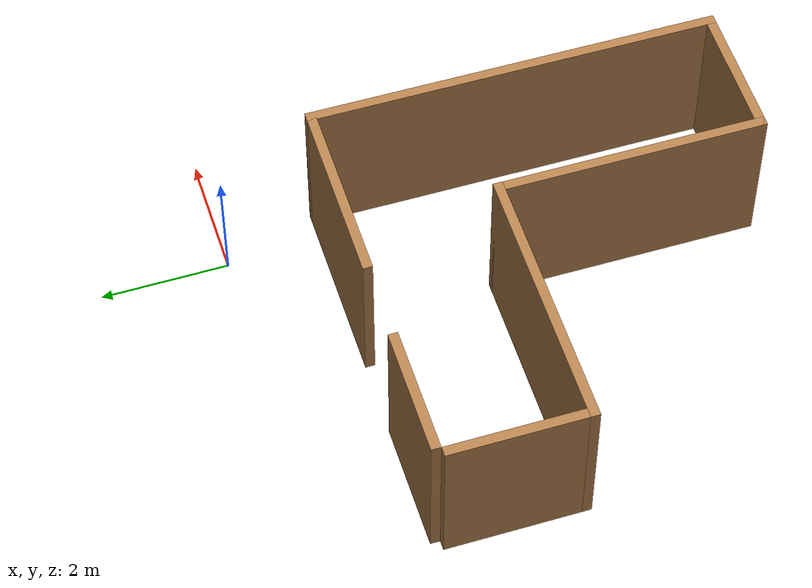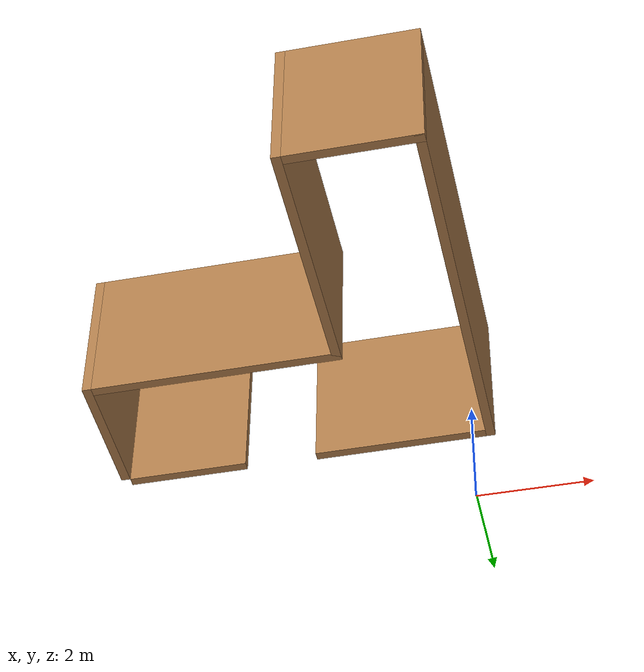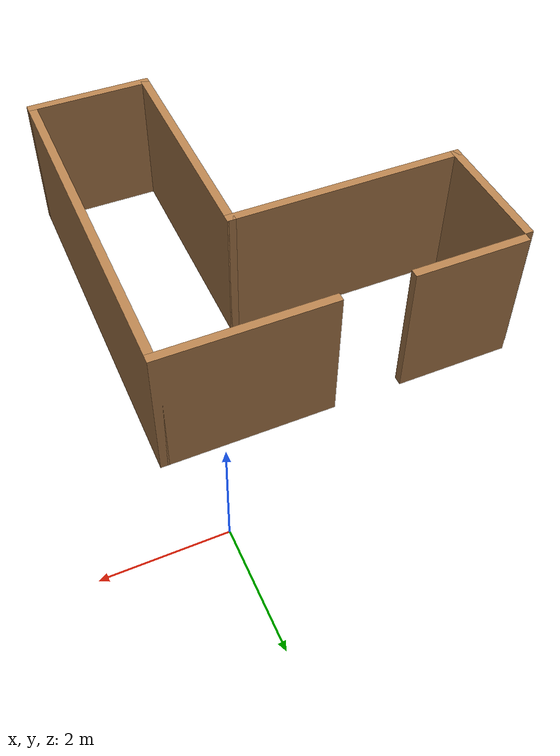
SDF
<?xml version='1.0'?>
<sdf version='1.6'>
  <model name='model_door'>
    <pose frame=''>-2.61882 -4.71945 0 0 -0 0</pose>
    <link name='Wall_71'>
      <collision name='Wall_71_Collision'>
        <geometry>
          <box>
            <size>3 0.15 2.5</size>
          </box>
        </geometry>
        <pose frame=''>0 0 1.25 0 -0 0</pose>
      </collision>
      <visual name='Wall_71_Visual'>
        <pose frame=''>0 0 1.25 0 -0 0</pose>
        <geometry>
          <box>
            <size>3 0.15 2.5</size>
          </box>
        </geometry>
        <material>
          <script>
            <uri>file://media/materials/scripts/gazebo.material</uri>
            <name>Gazebo/Wood</name>
          </script>
          <ambient>1 1 1 1</ambient>
        </material>
        <meta>
          <layer>0</layer>
        </meta>
      </visual>
      <pose frame=''>1.675 3.175 0 0 -0 0</pose>
    </link>
    <link name='Wall_73'>
      <collision name='Wall_73_Collision'>
        <geometry>
          <box>
            <size>6.5 0.15 2.5</size>
          </box>
        </geometry>
        <pose frame=''>0 0 1.25 0 -0 0</pose>
      </collision>
      <visual name='Wall_73_Visual'>
        <pose frame=''>0 0 1.25 0 -0 0</pose>
        <geometry>
          <box>
            <size>6.5 0.15 2.5</size>
          </box>
        </geometry>
        <material>
          <script>
            <uri>file://media/materials/scripts/gazebo.material</uri>
            <name>Gazebo/Wood</name>
          </script>
          <ambient>1 1 1 1</ambient>
        </material>
        <meta>
          <layer>0</layer>
        </meta>
      </visual>
      <pose frame=''>3.1 0 0 0 -0 -1.5708</pose>
    </link>
    <link name='Wall_75'>
      <collision name='Wall_75_Collision'>
        <geometry>
          <box>
            <size>2.25 0.15 2.5</size>
          </box>
        </geometry>
        <pose frame=''>0 0 1.25 0 -0 0</pose>
      </collision>
      <visual name='Wall_75_Visual'>
        <pose frame=''>0 0 1.25 0 -0 0</pose>
        <geometry>
          <box>
            <size>2.25 0.15 2.5</size>
          </box>
        </geometry>
        <material>
          <script>
            <uri>file://media/materials/scripts/gazebo.material</uri>
            <name>Gazebo/Wood</name>
          </script>
          <ambient>1 1 1 1</ambient>
        </material>
        <meta>
          <layer>0</layer>
        </meta>
      </visual>
      <pose frame=''>2.05 -3.175 0 0 -0 3.14159</pose>
    </link>
    <link name='Wall_80'>
      <collision name='Wall_80_Collision'>
        <geometry>
          <box>
            <size>4.25 0.15 2.5</size>
          </box>
        </geometry>
        <pose frame=''>0 0 1.25 0 -0 0</pose>
      </collision>
      <visual name='Wall_80_Visual'>
        <pose frame=''>0 0 1.25 0 -0 0</pose>
        <geometry>
          <box>
            <size>4.25 0.15 2.5</size>
          </box>
        </geometry>
        <material>
          <script>
            <uri>file://media/materials/scripts/gazebo.material</uri>
            <name>Gazebo/Wood</name>
          </script>
          <ambient>1 1 1 1</ambient>
        </material>
        <meta>
          <layer>0</layer>
        </meta>
      </visual>
      <pose frame=''>-1.05 0.925 0 0 -0 0</pose>
    </link>
    <link name='Wall_81'>
      <collision name='Wall_81_Collision'>
        <geometry>
          <box>
            <size>4.25 0.15 2.5</size>
          </box>
        </geometry>
        <pose frame=''>0 0 1.25 0 -0 0</pose>
      </collision>
      <visual name='Wall_81_Visual'>
        <pose frame=''>0 0 1.25 0 -0 0</pose>
        <geometry>
          <box>
            <size>4.25 0.15 2.5</size>
          </box>
        </geometry>
        <material>
          <script>
            <uri>file://media/materials/scripts/gazebo.material</uri>
            <name>Gazebo/Wood</name>
          </script>
          <ambient>1 1 1 1</ambient>
        </material>
        <meta>
          <layer>0</layer>
        </meta>
      </visual>
      <pose frame=''>1 -1.125 0 0 -0 -1.5708</pose>
    </link>
    <link name='Wall_89'>
      <collision name='Wall_89_Collision'>
        <geometry>
          <box>
            <size>2.25 0.15 2.5</size>
          </box>
        </geometry>
        <pose frame=''>0 0 1.25 0 -0 0</pose>
      </collision>
      <visual name='Wall_89_Visual'>
        <pose frame=''>0 0 1.25 0 -0 0</pose>
        <geometry>
          <box>
            <size>2.25 0.15 2.5</size>
          </box>
        </geometry>
        <material>
          <script>
            <uri>file://media/materials/scripts/gazebo.material</uri>
            <name>Gazebo/Wood</name>
          </script>
          <ambient>1 1 1 1</ambient>
        </material>
        <meta>
          <layer>0</layer>
        </meta>
      </visual>
      <pose frame=''>-3.1 1.975 0 0 -0 1.5708</pose>
    </link>
    <link name='Wall_93'>
      <collision name='Wall_93_Collision'>
        <geometry>
          <box>
            <size>2 0.15 2.5</size>
          </box>
        </geometry>
        <pose frame=''>0 0 1.25 0 -0 0</pose>
      </collision>
      <visual name='Wall_93_Visual'>
        <pose frame=''>0 0 1.25 0 -0 0</pose>
        <geometry>
          <box>
            <size>2 0.15 2.5</size>
          </box>
        </geometry>
        <material>
          <script>
            <uri>file://media/materials/scripts/gazebo.material</uri>
            <name>Gazebo/Wood</name>
          </script>
          <ambient>1 1 1 1</ambient>
        </material>
        <meta>
          <layer>0</layer>
        </meta>
      </visual>
      <pose frame=''>-2.025 3.175 0 0 -0 3.14159</pose>
    </link>
    <static>1</static>
  </model>
</sdf>
